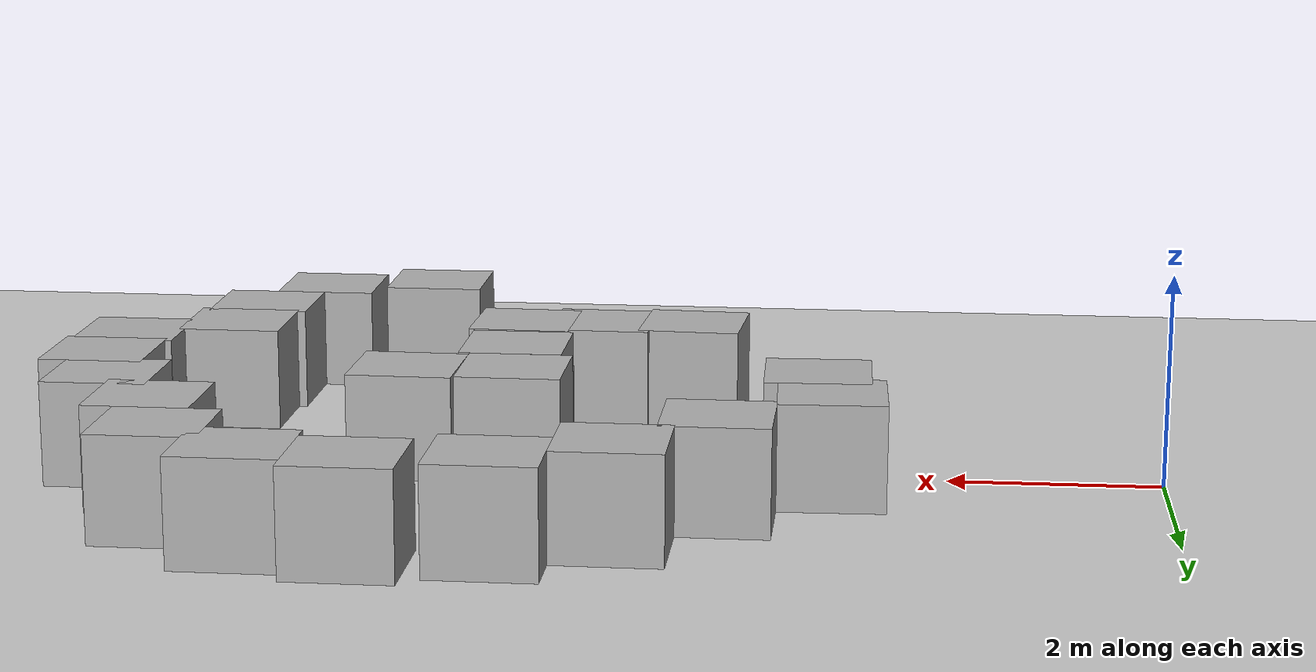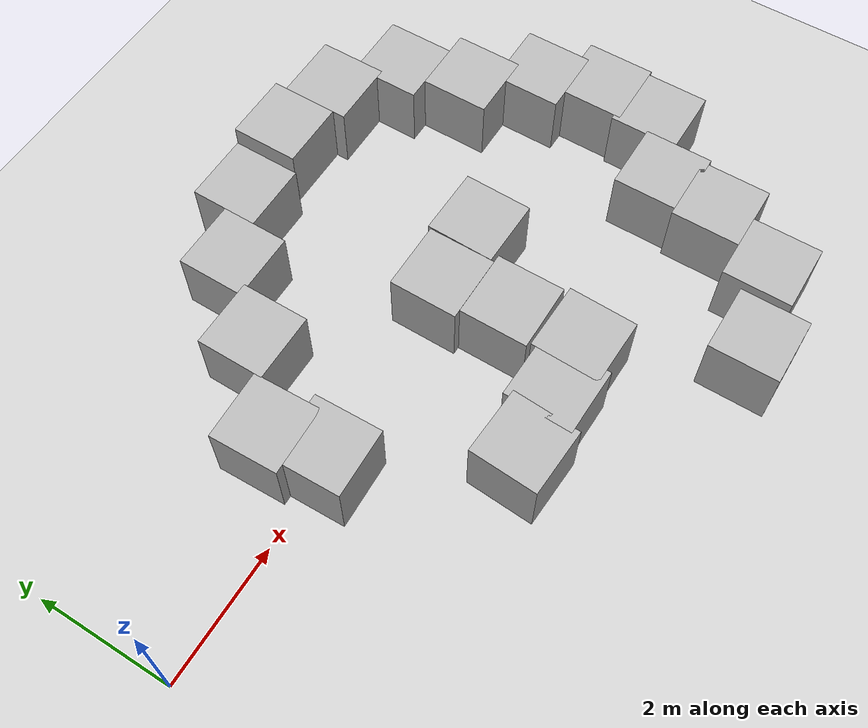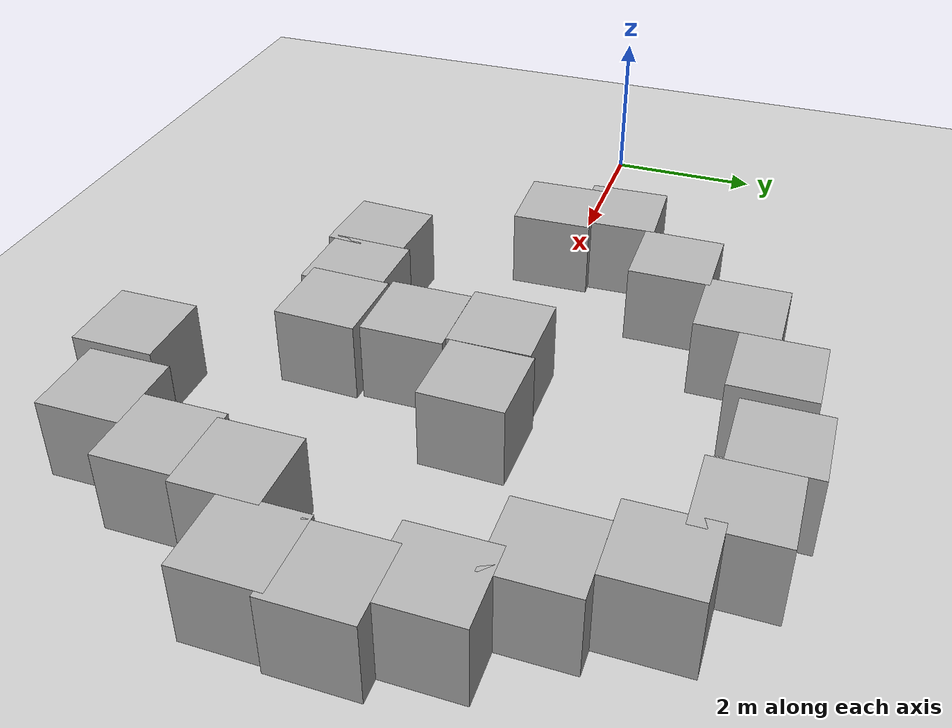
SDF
<sdf version='1.10'>
  <world name='empty'>
    <physics name='1ms' type='ignored'>
      <max_step_size>0.001</max_step_size>
      <real_time_factor>1</real_time_factor>
      <real_time_update_rate>1000</real_time_update_rate>
    </physics>
    <plugin name='gz::sim::systems::Physics' filename='gz-sim-physics-system'/>
    <plugin name='gz::sim::systems::UserCommands' filename='gz-sim-user-commands-system'/>
    <plugin name='gz::sim::systems::SceneBroadcaster' filename='gz-sim-scene-broadcaster-system'/>
    <plugin name='gz::sim::systems::Contact' filename='gz-sim-contact-system'/>
    <gravity>0 0 -9.8000000000000007</gravity>
    <magnetic_field>5.5644999999999998e-06 2.2875799999999999e-05 -4.2388400000000002e-05</magnetic_field>
    <atmosphere type='adiabatic'/>
    <scene>
      <ambient>0.400000006 0.400000006 0.400000006 1</ambient>
      <background>0.699999988 0.699999988 0.699999988 1</background>
      <shadows>true</shadows>
    </scene>
    <model name='ground_plane'>
      <static>true</static>
      <link name='link'>
        <collision name='collision'>
          <geometry>
            <plane>
              <normal>0 0 1</normal>
              <size>100 100</size>
            </plane>
          </geometry>
          <surface>
            <friction>
              <ode/>
            </friction>
            <bounce/>
            <contact/>
          </surface>
        </collision>
        <visual name='visual'>
          <geometry>
            <plane>
              <normal>0 0 1</normal>
              <size>100 100</size>
            </plane>
          </geometry>
          <material>
            <ambient>0.800000012 0.800000012 0.800000012 1</ambient>
            <diffuse>0.800000012 0.800000012 0.800000012 1</diffuse>
            <specular>0.800000012 0.800000012 0.800000012 1</specular>
          </material>
        </visual>
        <pose>0 0 0 0 0 0</pose>
        <inertial>
          <pose>0 0 0 0 0 0</pose>
          <mass>1</mass>
          <inertia>
            <ixx>1</ixx>
            <ixy>0</ixy>
            <ixz>0</ixz>
            <iyy>1</iyy>
            <iyz>0</iyz>
            <izz>1</izz>
          </inertia>
        </inertial>
        <enable_wind>false</enable_wind>
      </link>
      <pose>0 0 0 0 0 0</pose>
      <self_collide>false</self_collide>
    </model>
    <model name='box'>
      <pose>3.2260732418397327 -0.11966607249215507 0.49999999019985542 1.9471314888588288e-08 9.7099300777501013e-11 0.028102489282099487</pose>
      <link name='box_link'>
        <inertial>
          <inertia>
            <ixx>0.16666</ixx>
            <ixy>0</ixy>
            <ixz>0</ixz>
            <iyy>0.16666</iyy>
            <iyz>0</iyz>
            <izz>0.16666</izz>
          </inertia>
          <mass>1</mass>
          <pose>0 0 0 0 0 0</pose>
        </inertial>
        <collision name='box_collision'>
          <geometry>
            <box>
              <size>1 1 1</size>
            </box>
          </geometry>
          <surface>
            <friction>
              <ode/>
            </friction>
            <bounce/>
            <contact/>
          </surface>
        </collision>
        <visual name='box_visual'>
          <geometry>
            <box>
              <size>1 1 1</size>
            </box>
          </geometry>
          <material>
            <ambient>0.300000012 0.300000012 0.300000012 1</ambient>
            <diffuse>0.699999988 0.699999988 0.699999988 1</diffuse>
            <specular>1 1 1 1</specular>
          </material>
        </visual>
        <pose>0 0 0 0 0 0</pose>
        <enable_wind>false</enable_wind>
      </link>
      <static>false</static>
      <self_collide>false</self_collide>
    </model>
    <model name='box_0'>
      <pose>6.0905282516454466 -0.0091872931431038734 0.49999999409024315 -2.702048373865596e-08 -6.5066522013408223e-08 -0.0026107394919780594</pose>
      <link name='box_link'>
        <inertial>
          <inertia>
            <ixx>0.16666</ixx>
            <ixy>0</ixy>
            <ixz>0</ixz>
            <iyy>0.16666</iyy>
            <iyz>0</iyz>
            <izz>0.16666</izz>
          </inertia>
          <mass>1</mass>
          <pose>0 0 0 0 0 0</pose>
        </inertial>
        <collision name='box_collision'>
          <geometry>
            <box>
              <size>1 1 1</size>
            </box>
          </geometry>
          <surface>
            <friction>
              <ode/>
            </friction>
            <bounce/>
            <contact/>
          </surface>
        </collision>
        <visual name='box_visual'>
          <geometry>
            <box>
              <size>1 1 1</size>
            </box>
          </geometry>
          <material>
            <ambient>0.300000012 0.300000012 0.300000012 1</ambient>
            <diffuse>0.699999988 0.699999988 0.699999988 1</diffuse>
            <specular>1 1 1 1</specular>
          </material>
        </visual>
        <pose>0 0 0 0 0 0</pose>
        <enable_wind>false</enable_wind>
      </link>
      <static>false</static>
      <self_collide>false</self_collide>
    </model>
    <model name='box_1'>
      <pose>6.2013182895730594 -1.0103080025903386 0.49999983274069676 1.2309641561615162e-06 1.5270619643455389e-06 -0.00047281107115317782</pose>
      <link name='box_link'>
        <inertial>
          <inertia>
            <ixx>0.16666</ixx>
            <ixy>0</ixy>
            <ixz>0</ixz>
            <iyy>0.16666</iyy>
            <iyz>0</iyz>
            <izz>0.16666</izz>
          </inertia>
          <mass>1</mass>
          <pose>0 0 0 0 0 0</pose>
        </inertial>
        <collision name='box_collision'>
          <geometry>
            <box>
              <size>1 1 1</size>
            </box>
          </geometry>
          <surface>
            <friction>
              <ode/>
            </friction>
            <bounce/>
            <contact/>
          </surface>
        </collision>
        <visual name='box_visual'>
          <geometry>
            <box>
              <size>1 1 1</size>
            </box>
          </geometry>
          <material>
            <ambient>0.300000012 0.300000012 0.300000012 1</ambient>
            <diffuse>0.699999988 0.699999988 0.699999988 1</diffuse>
            <specular>1 1 1 1</specular>
          </material>
        </visual>
        <pose>0 0 0 0 0 0</pose>
        <enable_wind>false</enable_wind>
      </link>
      <static>false</static>
      <self_collide>false</self_collide>
    </model>
    <model name='box_2'>
      <pose>6.2485253456851195 -2.0531059381394994 0.49999999021397473 -6.3310719484374536e-11 1.9607811712561701e-08 -0.029123859700892183</pose>
      <link name='box_link'>
        <inertial>
          <inertia>
            <ixx>0.16666</ixx>
            <ixy>0</ixy>
            <ixz>0</ixz>
            <iyy>0.16666</iyy>
            <iyz>0</iyz>
            <izz>0.16666</izz>
          </inertia>
          <mass>1</mass>
          <pose>0 0 0 0 0 0</pose>
        </inertial>
        <collision name='box_collision'>
          <geometry>
            <box>
              <size>1 1 1</size>
            </box>
          </geometry>
          <surface>
            <friction>
              <ode/>
            </friction>
            <bounce/>
            <contact/>
          </surface>
        </collision>
        <visual name='box_visual'>
          <geometry>
            <box>
              <size>1 1 1</size>
            </box>
          </geometry>
          <material>
            <ambient>0.300000012 0.300000012 0.300000012 1</ambient>
            <diffuse>0.699999988 0.699999988 0.699999988 1</diffuse>
            <specular>1 1 1 1</specular>
          </material>
        </visual>
        <pose>0 0 0 0 0 0</pose>
        <enable_wind>false</enable_wind>
      </link>
      <static>false</static>
      <self_collide>false</self_collide>
    </model>
    <model name='box_3'>
      <pose>5.4534032005825646 -2.1029164253086314 0.49999945425828785 -1.0260999344523172e-07 9.2603722614215187e-07 -0.026331363260099629</pose>
      <link name='box_link'>
        <inertial>
          <inertia>
            <ixx>0.16666</ixx>
            <ixy>0</ixy>
            <ixz>0</ixz>
            <iyy>0.16666</iyy>
            <iyz>0</iyz>
            <izz>0.16666</izz>
          </inertia>
          <mass>1</mass>
          <pose>0 0 0 0 0 0</pose>
        </inertial>
        <collision name='box_collision'>
          <geometry>
            <box>
              <size>1 1 1</size>
            </box>
          </geometry>
          <surface>
            <friction>
              <ode/>
            </friction>
            <bounce/>
            <contact/>
          </surface>
        </collision>
        <visual name='box_visual'>
          <geometry>
            <box>
              <size>1 1 1</size>
            </box>
          </geometry>
          <material>
            <ambient>0.300000012 0.300000012 0.300000012 1</ambient>
            <diffuse>0.699999988 0.699999988 0.699999988 1</diffuse>
            <specular>1 1 1 1</specular>
          </material>
        </visual>
        <pose>0 0 0 0 0 0</pose>
        <enable_wind>false</enable_wind>
      </link>
      <static>false</static>
      <self_collide>false</self_collide>
    </model>
    <model name='box_4'>
      <pose>4.5445045690675014 -2.1519953907246117 0.49999999048595994 1.1576587925898863e-09 -2.0140125245890734e-08 -0.05729177128875021</pose>
      <link name='box_link'>
        <inertial>
          <inertia>
            <ixx>0.16666</ixx>
            <ixy>0</ixy>
            <ixz>0</ixz>
            <iyy>0.16666</iyy>
            <iyz>0</iyz>
            <izz>0.16666</izz>
          </inertia>
          <mass>1</mass>
          <pose>0 0 0 0 0 0</pose>
        </inertial>
        <collision name='box_collision'>
          <geometry>
            <box>
              <size>1 1 1</size>
            </box>
          </geometry>
          <surface>
            <friction>
              <ode/>
            </friction>
            <bounce/>
            <contact/>
          </surface>
        </collision>
        <visual name='box_visual'>
          <geometry>
            <box>
              <size>1 1 1</size>
            </box>
          </geometry>
          <material>
            <ambient>0.300000012 0.300000012 0.300000012 1</ambient>
            <diffuse>0.699999988 0.699999988 0.699999988 1</diffuse>
            <specular>1 1 1 1</specular>
          </material>
        </visual>
        <pose>0 0 0 0 0 0</pose>
        <enable_wind>false</enable_wind>
      </link>
      <static>false</static>
      <self_collide>false</self_collide>
    </model>
    <model name='box_5'>
      <pose>7.0994270639145753 0.028762143489937716 0.49999999019953789 6.535880295493573e-10 1.2172886664858331e-09 -0.020363258913584013</pose>
      <link name='box_link'>
        <inertial>
          <inertia>
            <ixx>0.16666</ixx>
            <ixy>0</ixy>
            <ixz>0</ixz>
            <iyy>0.16666</iyy>
            <iyz>0</iyz>
            <izz>0.16666</izz>
          </inertia>
          <mass>1</mass>
          <pose>0 0 0 0 0 0</pose>
        </inertial>
        <collision name='box_collision'>
          <geometry>
            <box>
              <size>1 1 1</size>
            </box>
          </geometry>
          <surface>
            <friction>
              <ode/>
            </friction>
            <bounce/>
            <contact/>
          </surface>
        </collision>
        <visual name='box_visual'>
          <geometry>
            <box>
              <size>1 1 1</size>
            </box>
          </geometry>
          <material>
            <ambient>0.300000012 0.300000012 0.300000012 1</ambient>
            <diffuse>0.699999988 0.699999988 0.699999988 1</diffuse>
            <specular>1 1 1 1</specular>
          </material>
        </visual>
        <pose>0 0 0 0 0 0</pose>
        <enable_wind>false</enable_wind>
      </link>
      <static>false</static>
      <self_collide>false</self_collide>
    </model>
    <model name='box_8'>
      <pose>9.1328886321126923 -1.7362151544034017 0.49999999959485114 -3.7226968564449914e-08 -3.7656623750259506e-08 5.1915850737788764e-06</pose>
      <link name='box_link'>
        <inertial>
          <inertia>
            <ixx>0.16666</ixx>
            <ixy>0</ixy>
            <ixz>0</ixz>
            <iyy>0.16666</iyy>
            <iyz>0</iyz>
            <izz>0.16666</izz>
          </inertia>
          <mass>1</mass>
          <pose>0 0 0 0 0 0</pose>
        </inertial>
        <collision name='box_collision'>
          <geometry>
            <box>
              <size>1 1 1</size>
            </box>
          </geometry>
          <surface>
            <friction>
              <ode/>
            </friction>
            <bounce/>
            <contact/>
          </surface>
        </collision>
        <visual name='box_visual'>
          <geometry>
            <box>
              <size>1 1 1</size>
            </box>
          </geometry>
          <material>
            <ambient>0.300000012 0.300000012 0.300000012 1</ambient>
            <diffuse>0.699999988 0.699999988 0.699999988 1</diffuse>
            <specular>1 1 1 1</specular>
          </material>
        </visual>
        <pose>0 0 0 0 0 0</pose>
        <enable_wind>false</enable_wind>
      </link>
      <static>false</static>
      <self_collide>false</self_collide>
    </model>
    <model name='box_9'>
      <pose>9.0500788793545155 -2.6586710215557021 0.49999999019930086 1.9599111582472779e-08 -1.7298735319497023e-11 -2.8854228916715574e-06</pose>
      <link name='box_link'>
        <inertial>
          <inertia>
            <ixx>0.16666</ixx>
            <ixy>0</ixy>
            <ixz>0</ixz>
            <iyy>0.16666</iyy>
            <iyz>0</iyz>
            <izz>0.16666</izz>
          </inertia>
          <mass>1</mass>
          <pose>0 0 0 0 0 0</pose>
        </inertial>
        <collision name='box_collision'>
          <geometry>
            <box>
              <size>1 1 1</size>
            </box>
          </geometry>
          <surface>
            <friction>
              <ode/>
            </friction>
            <bounce/>
            <contact/>
          </surface>
        </collision>
        <visual name='box_visual'>
          <geometry>
            <box>
              <size>1 1 1</size>
            </box>
          </geometry>
          <material>
            <ambient>0.300000012 0.300000012 0.300000012 1</ambient>
            <diffuse>0.699999988 0.699999988 0.699999988 1</diffuse>
            <specular>1 1 1 1</specular>
          </material>
        </visual>
        <pose>0 0 0 0 0 0</pose>
        <enable_wind>false</enable_wind>
      </link>
      <static>false</static>
      <self_collide>false</self_collide>
    </model>
    <model name='box_10'>
      <pose>8.5461861333919611 -3.6526027415071831 0.49999999020640901 1.959267019391921e-08 -1.874702775539603e-10 -6.6039599000961463e-06</pose>
      <link name='box_link'>
        <inertial>
          <inertia>
            <ixx>0.16666</ixx>
            <ixy>0</ixy>
            <ixz>0</ixz>
            <iyy>0.16666</iyy>
            <iyz>0</iyz>
            <izz>0.16666</izz>
          </inertia>
          <mass>1</mass>
          <pose>0 0 0 0 0 0</pose>
        </inertial>
        <collision name='box_collision'>
          <geometry>
            <box>
              <size>1 1 1</size>
            </box>
          </geometry>
          <surface>
            <friction>
              <ode/>
            </friction>
            <bounce/>
            <contact/>
          </surface>
        </collision>
        <visual name='box_visual'>
          <geometry>
            <box>
              <size>1 1 1</size>
            </box>
          </geometry>
          <material>
            <ambient>0.300000012 0.300000012 0.300000012 1</ambient>
            <diffuse>0.699999988 0.699999988 0.699999988 1</diffuse>
            <specular>1 1 1 1</specular>
          </material>
        </visual>
        <pose>0 0 0 0 0 0</pose>
        <enable_wind>false</enable_wind>
      </link>
      <static>false</static>
      <self_collide>false</self_collide>
    </model>
    <model name='box_11'>
      <pose>7.4373581103741708 -3.969069011526825 0.49999999990199806 6.2287739151293738e-22 9.3279666454713669e-22 -3.6315533669320137e-22</pose>
      <link name='box_link'>
        <inertial>
          <inertia>
            <ixx>0.16666</ixx>
            <ixy>0</ixy>
            <ixz>0</ixz>
            <iyy>0.16666</iyy>
            <iyz>0</iyz>
            <izz>0.16666</izz>
          </inertia>
          <mass>1</mass>
          <pose>0 0 0 0 0 0</pose>
        </inertial>
        <collision name='box_collision'>
          <geometry>
            <box>
              <size>1 1 1</size>
            </box>
          </geometry>
          <surface>
            <friction>
              <ode/>
            </friction>
            <bounce/>
            <contact/>
          </surface>
        </collision>
        <visual name='box_visual'>
          <geometry>
            <box>
              <size>1 1 1</size>
            </box>
          </geometry>
          <material>
            <ambient>0.300000012 0.300000012 0.300000012 1</ambient>
            <diffuse>0.699999988 0.699999988 0.699999988 1</diffuse>
            <specular>1 1 1 1</specular>
          </material>
        </visual>
        <pose>0 0 0 0 0 0</pose>
        <enable_wind>false</enable_wind>
      </link>
      <static>false</static>
      <self_collide>false</self_collide>
    </model>
    <model name='box_12'>
      <pose>3.067590246077105 0.69545717466049761 0.49999999961766645 -3.8307148536379426e-08 -3.7805910912880626e-08 0.033135165319040441</pose>
      <link name='box_link'>
        <inertial>
          <inertia>
            <ixx>0.16666</ixx>
            <ixy>0</ixy>
            <ixz>0</ixz>
            <iyy>0.16666</iyy>
            <iyz>0</iyz>
            <izz>0.16666</izz>
          </inertia>
          <mass>1</mass>
          <pose>0 0 0 0 0 0</pose>
        </inertial>
        <collision name='box_collision'>
          <geometry>
            <box>
              <size>1 1 1</size>
            </box>
          </geometry>
          <surface>
            <friction>
              <ode/>
            </friction>
            <bounce/>
            <contact/>
          </surface>
        </collision>
        <visual name='box_visual'>
          <geometry>
            <box>
              <size>1 1 1</size>
            </box>
          </geometry>
          <material>
            <ambient>0.300000012 0.300000012 0.300000012 1</ambient>
            <diffuse>0.699999988 0.699999988 0.699999988 1</diffuse>
            <specular>1 1 1 1</specular>
          </material>
        </visual>
        <pose>0 0 0 0 0 0</pose>
        <enable_wind>false</enable_wind>
      </link>
      <static>false</static>
      <self_collide>false</self_collide>
    </model>
    <model name='box_13'>
      <pose>4.0449259872927668 1.5998623401140546 0.49999999952028368 3.7386256790997784e-08 3.7669029320098546e-08 6.2701365535739842e-05</pose>
      <link name='box_link'>
        <inertial>
          <inertia>
            <ixx>0.16666</ixx>
            <ixy>0</ixy>
            <ixz>0</ixz>
            <iyy>0.16666</iyy>
            <iyz>0</iyz>
            <izz>0.16666</izz>
          </inertia>
          <mass>1</mass>
          <pose>0 0 0 0 0 0</pose>
        </inertial>
        <collision name='box_collision'>
          <geometry>
            <box>
              <size>1 1 1</size>
            </box>
          </geometry>
          <surface>
            <friction>
              <ode/>
            </friction>
            <bounce/>
            <contact/>
          </surface>
        </collision>
        <visual name='box_visual'>
          <geometry>
            <box>
              <size>1 1 1</size>
            </box>
          </geometry>
          <material>
            <ambient>0.300000012 0.300000012 0.300000012 1</ambient>
            <diffuse>0.699999988 0.699999988 0.699999988 1</diffuse>
            <specular>1 1 1 1</specular>
          </material>
        </visual>
        <pose>0 0 0 0 0 0</pose>
        <enable_wind>false</enable_wind>
      </link>
      <static>false</static>
      <self_collide>false</self_collide>
    </model>
    <model name='box_14'>
      <pose>4.8900219470921327 2.5454295694369473 0.4999999918162254 -2.2834594263684445e-08 -6.4672550262468051e-09 -3.4282703134543192e-05</pose>
      <link name='box_link'>
        <inertial>
          <inertia>
            <ixx>0.16666</ixx>
            <ixy>0</ixy>
            <ixz>0</ixz>
            <iyy>0.16666</iyy>
            <iyz>0</iyz>
            <izz>0.16666</izz>
          </inertia>
          <mass>1</mass>
          <pose>0 0 0 0 0 0</pose>
        </inertial>
        <collision name='box_collision'>
          <geometry>
            <box>
              <size>1 1 1</size>
            </box>
          </geometry>
          <surface>
            <friction>
              <ode/>
            </friction>
            <bounce/>
            <contact/>
          </surface>
        </collision>
        <visual name='box_visual'>
          <geometry>
            <box>
              <size>1 1 1</size>
            </box>
          </geometry>
          <material>
            <ambient>0.300000012 0.300000012 0.300000012 1</ambient>
            <diffuse>0.699999988 0.699999988 0.699999988 1</diffuse>
            <specular>1 1 1 1</specular>
          </material>
        </visual>
        <pose>0 0 0 0 0 0</pose>
        <enable_wind>false</enable_wind>
      </link>
      <static>false</static>
      <self_collide>false</self_collide>
    </model>
    <model name='box_15'>
      <pose>5.8900382218277425 3.071665309063103 0.49999999019633268 -5.293507497320468e-11 1.9587095147241315e-08 1.9806182977879413e-06</pose>
      <link name='box_link'>
        <inertial>
          <inertia>
            <ixx>0.16666</ixx>
            <ixy>0</ixy>
            <ixz>0</ixz>
            <iyy>0.16666</iyy>
            <iyz>0</iyz>
            <izz>0.16666</izz>
          </inertia>
          <mass>1</mass>
          <pose>0 0 0 0 0 0</pose>
        </inertial>
        <collision name='box_collision'>
          <geometry>
            <box>
              <size>1 1 1</size>
            </box>
          </geometry>
          <surface>
            <friction>
              <ode/>
            </friction>
            <bounce/>
            <contact/>
          </surface>
        </collision>
        <visual name='box_visual'>
          <geometry>
            <box>
              <size>1 1 1</size>
            </box>
          </geometry>
          <material>
            <ambient>0.300000012 0.300000012 0.300000012 1</ambient>
            <diffuse>0.699999988 0.699999988 0.699999988 1</diffuse>
            <specular>1 1 1 1</specular>
          </material>
        </visual>
        <pose>0 0 0 0 0 0</pose>
        <enable_wind>false</enable_wind>
      </link>
      <static>false</static>
      <self_collide>false</self_collide>
    </model>
    <model name='box_16'>
      <pose>7.0666075635138146 3.2505553292005995 0.49999999020864211 -8.7271943373218061e-10 -8.8226941223509553e-09 -1.8413230994276675e-06</pose>
      <link name='box_link'>
        <inertial>
          <inertia>
            <ixx>0.16666</ixx>
            <ixy>0</ixy>
            <ixz>0</ixz>
            <iyy>0.16666</iyy>
            <iyz>0</iyz>
            <izz>0.16666</izz>
          </inertia>
          <mass>1</mass>
          <pose>0 0 0 0 0 0</pose>
        </inertial>
        <collision name='box_collision'>
          <geometry>
            <box>
              <size>1 1 1</size>
            </box>
          </geometry>
          <surface>
            <friction>
              <ode/>
            </friction>
            <bounce/>
            <contact/>
          </surface>
        </collision>
        <visual name='box_visual'>
          <geometry>
            <box>
              <size>1 1 1</size>
            </box>
          </geometry>
          <material>
            <ambient>0.300000012 0.300000012 0.300000012 1</ambient>
            <diffuse>0.699999988 0.699999988 0.699999988 1</diffuse>
            <specular>1 1 1 1</specular>
          </material>
        </visual>
        <pose>0 0 0 0 0 0</pose>
        <enable_wind>false</enable_wind>
      </link>
      <static>false</static>
      <self_collide>false</self_collide>
    </model>
    <model name='box_17'>
      <pose>8.0666078375823496 3.0668651844253225 0.49999999018229963 -3.4380854445823191e-10 -9.9754922418791417e-09 -1.4416212670478278e-06</pose>
      <link name='box_link'>
        <inertial>
          <inertia>
            <ixx>0.16666</ixx>
            <ixy>0</ixy>
            <ixz>0</ixz>
            <iyy>0.16666</iyy>
            <iyz>0</iyz>
            <izz>0.16666</izz>
          </inertia>
          <mass>1</mass>
          <pose>0 0 0 0 0 0</pose>
        </inertial>
        <collision name='box_collision'>
          <geometry>
            <box>
              <size>1 1 1</size>
            </box>
          </geometry>
          <surface>
            <friction>
              <ode/>
            </friction>
            <bounce/>
            <contact/>
          </surface>
        </collision>
        <visual name='box_visual'>
          <geometry>
            <box>
              <size>1 1 1</size>
            </box>
          </geometry>
          <material>
            <ambient>0.300000012 0.300000012 0.300000012 1</ambient>
            <diffuse>0.699999988 0.699999988 0.699999988 1</diffuse>
            <specular>1 1 1 1</specular>
          </material>
        </visual>
        <pose>0 0 0 0 0 0</pose>
        <enable_wind>false</enable_wind>
      </link>
      <static>false</static>
      <self_collide>false</self_collide>
    </model>
    <model name='box_18'>
      <pose>8.931122935908574 2.4330155136135869 0.49999999746306389 -2.7155954778422429e-08 3.218690893103959e-08 3.6162099285219474e-05</pose>
      <link name='box_link'>
        <inertial>
          <inertia>
            <ixx>0.16666</ixx>
            <ixy>0</ixy>
            <ixz>0</ixz>
            <iyy>0.16666</iyy>
            <iyz>0</iyz>
            <izz>0.16666</izz>
          </inertia>
          <mass>1</mass>
          <pose>0 0 0 0 0 0</pose>
        </inertial>
        <collision name='box_collision'>
          <geometry>
            <box>
              <size>1 1 1</size>
            </box>
          </geometry>
          <surface>
            <friction>
              <ode/>
            </friction>
            <bounce/>
            <contact/>
          </surface>
        </collision>
        <visual name='box_visual'>
          <geometry>
            <box>
              <size>1 1 1</size>
            </box>
          </geometry>
          <material>
            <ambient>0.300000012 0.300000012 0.300000012 1</ambient>
            <diffuse>0.699999988 0.699999988 0.699999988 1</diffuse>
            <specular>1 1 1 1</specular>
          </material>
        </visual>
        <pose>0 0 0 0 0 0</pose>
        <enable_wind>false</enable_wind>
      </link>
      <static>false</static>
      <self_collide>false</self_collide>
    </model>
    <model name='box_19'>
      <pose>9.2413118648326353 1.4330124946357168 0.49999999176782617 -2.3009851026041764e-08 -6.6297072820900349e-09 0.00011656610230977699</pose>
      <link name='box_link'>
        <inertial>
          <inertia>
            <ixx>0.16666</ixx>
            <ixy>0</ixy>
            <ixz>0</ixz>
            <iyy>0.16666</iyy>
            <iyz>0</iyz>
            <izz>0.16666</izz>
          </inertia>
          <mass>1</mass>
          <pose>0 0 0 0 0 0</pose>
        </inertial>
        <collision name='box_collision'>
          <geometry>
            <box>
              <size>1 1 1</size>
            </box>
          </geometry>
          <surface>
            <friction>
              <ode/>
            </friction>
            <bounce/>
            <contact/>
          </surface>
        </collision>
        <visual name='box_visual'>
          <geometry>
            <box>
              <size>1 1 1</size>
            </box>
          </geometry>
          <material>
            <ambient>0.300000012 0.300000012 0.300000012 1</ambient>
            <diffuse>0.699999988 0.699999988 0.699999988 1</diffuse>
            <specular>1 1 1 1</specular>
          </material>
        </visual>
        <pose>0 0 0 0 0 0</pose>
        <enable_wind>false</enable_wind>
      </link>
      <static>false</static>
      <self_collide>false</self_collide>
    </model>
    <model name='box_6'>
      <pose>9.8654478745565441 0.60113612195681487 0.49999999012128382 -2.7286190496463647e-09 8.3199498316450144e-10 0.00011098678633643636</pose>
      <link name='box_link'>
        <inertial>
          <inertia>
            <ixx>0.16666</ixx>
            <ixy>0</ixy>
            <ixz>0</ixz>
            <iyy>0.16666</iyy>
            <iyz>0</iyz>
            <izz>0.16666</izz>
          </inertia>
          <mass>1</mass>
          <pose>0 0 0 0 0 0</pose>
        </inertial>
        <collision name='box_collision'>
          <geometry>
            <box>
              <size>1 1 1</size>
            </box>
          </geometry>
          <surface>
            <friction>
              <ode/>
            </friction>
            <bounce/>
            <contact/>
          </surface>
        </collision>
        <visual name='box_visual'>
          <geometry>
            <box>
              <size>1 1 1</size>
            </box>
          </geometry>
          <material>
            <ambient>0.300000012 0.300000012 0.300000012 1</ambient>
            <diffuse>0.699999988 0.699999988 0.699999988 1</diffuse>
            <specular>1 1 1 1</specular>
          </material>
        </visual>
        <pose>0 0 0 0 0 0</pose>
        <enable_wind>false</enable_wind>
      </link>
      <static>false</static>
      <self_collide>false</self_collide>
    </model>
    <model name='box_20'>
      <pose>10.143355835238706 -0.28952942176541741 0.4999999914152925 2.2027758045020863e-08 5.2449180780081804e-09 0.0001124225260363892</pose>
      <link name='box_link'>
        <inertial>
          <inertia>
            <ixx>0.16666</ixx>
            <ixy>0</ixy>
            <ixz>0</ixz>
            <iyy>0.16666</iyy>
            <iyz>0</iyz>
            <izz>0.16666</izz>
          </inertia>
          <mass>1</mass>
          <pose>0 0 0 0 0 0</pose>
        </inertial>
        <collision name='box_collision'>
          <geometry>
            <box>
              <size>1 1 1</size>
            </box>
          </geometry>
          <surface>
            <friction>
              <ode/>
            </friction>
            <bounce/>
            <contact/>
          </surface>
        </collision>
        <visual name='box_visual'>
          <geometry>
            <box>
              <size>1 1 1</size>
            </box>
          </geometry>
          <material>
            <ambient>0.300000012 0.300000012 0.300000012 1</ambient>
            <diffuse>0.699999988 0.699999988 0.699999988 1</diffuse>
            <specular>1 1 1 1</specular>
          </material>
        </visual>
        <pose>0 0 0 0 0 0</pose>
        <enable_wind>false</enable_wind>
      </link>
      <static>false</static>
      <self_collide>false</self_collide>
    </model>
    <model name='box_7'>
      <pose>10.077908155736411 -1.1957711970473821 0.4999999995368361 3.7613377097126103e-08 3.7011175545413448e-08 1.1056533199753852e-05</pose>
      <link name='box_link'>
        <inertial>
          <inertia>
            <ixx>0.16666</ixx>
            <ixy>0</ixy>
            <ixz>0</ixz>
            <iyy>0.16666</iyy>
            <iyz>0</iyz>
            <izz>0.16666</izz>
          </inertia>
          <mass>1</mass>
          <pose>0 0 0 0 0 0</pose>
        </inertial>
        <collision name='box_collision'>
          <geometry>
            <box>
              <size>1 1 1</size>
            </box>
          </geometry>
          <surface>
            <friction>
              <ode/>
            </friction>
            <bounce/>
            <contact/>
          </surface>
        </collision>
        <visual name='box_visual'>
          <geometry>
            <box>
              <size>1 1 1</size>
            </box>
          </geometry>
          <material>
            <ambient>0.300000012 0.300000012 0.300000012 1</ambient>
            <diffuse>0.699999988 0.699999988 0.699999988 1</diffuse>
            <specular>1 1 1 1</specular>
          </material>
        </visual>
        <pose>0 0 0 0 0 0</pose>
        <enable_wind>false</enable_wind>
      </link>
      <static>false</static>
      <self_collide>false</self_collide>
    </model>
    <light name='sun' type='directional'>
      <pose>0 0 10 0 0 0</pose>
      <cast_shadows>true</cast_shadows>
      <intensity>1</intensity>
      <direction>-0.5 0.10000000000000001 -0.90000000000000002</direction>
      <diffuse>0.800000012 0.800000012 0.800000012 1</diffuse>
      <specular>0.200000003 0.200000003 0.200000003 1</specular>
      <attenuation>
        <range>1000</range>
        <linear>0.01</linear>
        <constant>0.90000000000000002</constant>
        <quadratic>0.001</quadratic>
      </attenuation>
      <spot>
        <inner_angle>0</inner_angle>
        <outer_angle>0</outer_angle>
        <falloff>0</falloff>
      </spot>
    </light>
  </world>
</sdf>
